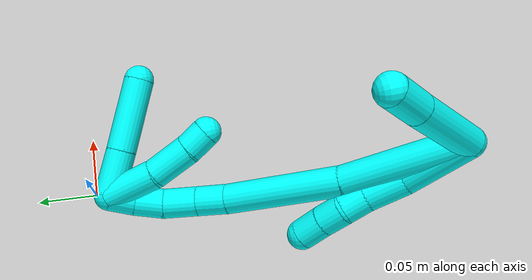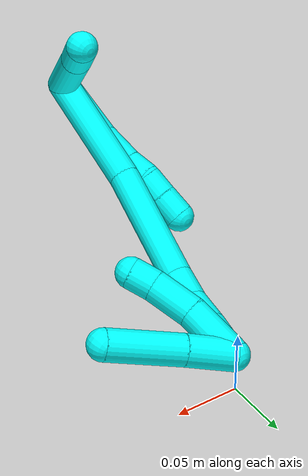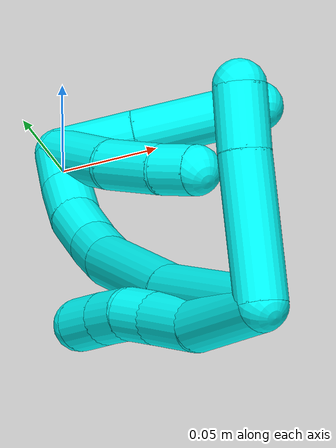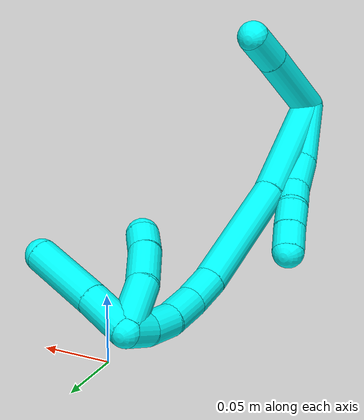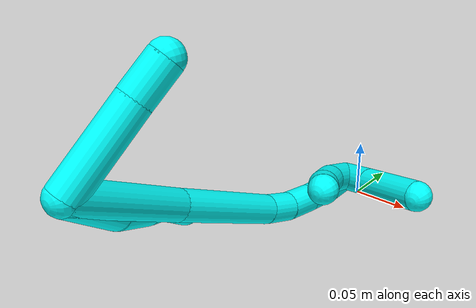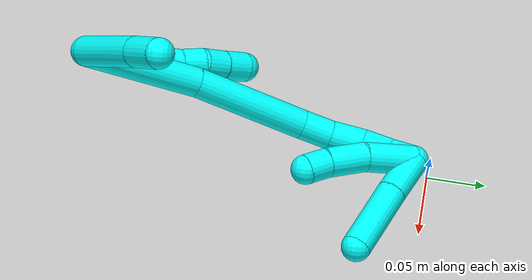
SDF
<sdf version="1.7">
 <world name="default">
  <model name="3">
   <static>0</static>
   <link name="3">
    <collision name="collision-cylinder-e_1_2_8">
     <pose>0.017478 0.001142 -0.021653 -3.08889 0.678436 -2.99247</pose>
     <geometry><cylinder><radius>0.0125</radius><length>0.055701</length></cylinder></geometry>
     <surface>
      <friction><ode><mu>1.16</mu><mu2>1.16</mu2><slip1>0</slip1><slip2>0</slip2></ode></friction>
      <contact><ode><kp>1e+06</kp><kd>1</kd><max_vel>0</max_vel><min_depth>0.001</min_depth></ode></contact>
     </surface>
    </collision>
    <visual name="visual-cylinder-e_1_2_8">
     <pose>0.017478 0.001142 -0.021653 -3.08889 0.678436 -2.99247</pose>
     <geometry><cylinder><radius>0.0125</radius><length>0.055701</length></cylinder></geometry>
     <material><ambient>0.003922 1 0.996078 1</ambient></material>
    </visual>
    <collision name="collision-cylinder-e_2_8_9">
     <pose>0.04152 0.002329 -0.058264 -3.13861 0.413512 -3.12735</pose>
     <geometry><cylinder><radius>0.0125</radius><length>0.03267</length></cylinder></geometry>
     <surface>
      <friction><ode><mu>1.16</mu><mu2>1.16</mu2><slip1>0</slip1><slip2>0</slip2></ode></friction>
      <contact><ode><kp>1e+06</kp><kd>1</kd><max_vel>0</max_vel><min_depth>0.001</min_depth></ode></contact>
     </surface>
    </collision>
    <visual name="visual-cylinder-e_2_8_9">
     <pose>0.04152 0.002329 -0.058264 -3.13861 0.413512 -3.12735</pose>
     <geometry><cylinder><radius>0.0125</radius><length>0.03267</length></cylinder></geometry>
     <material><ambient>0.003922 1 0.996078 1</ambient></material>
    </visual>
    <collision name="collision-cylinder-e_3_9_10">
     <pose>0.051983 0.001059 -0.082384 2.99907 0.398727 2.46237</pose>
     <geometry><cylinder><radius>0.0125</radius><length>0.020086</length></cylinder></geometry>
     <surface>
      <friction><ode><mu>1.16</mu><mu2>1.16</mu2><slip1>0</slip1><slip2>0</slip2></ode></friction>
      <contact><ode><kp>1e+06</kp><kd>1</kd><max_vel>0</max_vel><min_depth>0.001</min_depth></ode></contact>
     </surface>
    </collision>
    <visual name="visual-cylinder-e_3_9_10">
     <pose>0.051983 0.001059 -0.082384 2.99907 0.398727 2.46237</pose>
     <geometry><cylinder><radius>0.0125</radius><length>0.020086</length></cylinder></geometry>
     <material><ambient>0.003922 1 0.996078 1</ambient></material>
    </visual>
    <collision name="collision-cylinder-e_4_10_11">
     <pose>0.061685 -0.000161 -0.099693 -3.13006 0.618777 -3.10553</pose>
     <geometry><cylinder><radius>0.0125</radius><length>0.020006</length></cylinder></geometry>
     <surface>
      <friction><ode><mu>1.16</mu><mu2>1.16</mu2><slip1>0</slip1><slip2>0</slip2></ode></friction>
      <contact><ode><kp>1e+06</kp><kd>1</kd><max_vel>0</max_vel><min_depth>0.001</min_depth></ode></contact>
     </surface>
    </collision>
    <visual name="visual-cylinder-e_4_10_11">
     <pose>0.061685 -0.000161 -0.099693 -3.13006 0.618777 -3.10553</pose>
     <geometry><cylinder><radius>0.0125</radius><length>0.020006</length></cylinder></geometry>
     <material><ambient>0.003922 1 0.996078 1</ambient></material>
    </visual>
    <collision name="collision-cylinder-e_5_11_6">
     <pose>0.074044 -0.000356 -0.116378 3.10778 0.654692 3.0421</pose>
     <geometry><cylinder><radius>0.0125</radius><length>0.021537</length></cylinder></geometry>
     <surface>
      <friction><ode><mu>1.16</mu><mu2>1.16</mu2><slip1>0</slip1><slip2>0</slip2></ode></friction>
      <contact><ode><kp>1e+06</kp><kd>1</kd><max_vel>0</max_vel><min_depth>0.001</min_depth></ode></contact>
     </surface>
    </collision>
    <visual name="visual-cylinder-e_5_11_6">
     <pose>0.074044 -0.000356 -0.116378 3.10778 0.654692 3.0421</pose>
     <geometry><cylinder><radius>0.0125</radius><length>0.021537</length></cylinder></geometry>
     <material><ambient>0.003922 1 0.996078 1</ambient></material>
    </visual>
    <collision name="collision-cylinder-e_1_2_12">
     <pose>-0.026279 0.000136 -0.022579 -3.13557 -0.860978 3.12849</pose>
     <geometry><cylinder><radius>0.0125</radius><length>0.069294</length></cylinder></geometry>
     <surface>
      <friction><ode><mu>1.16</mu><mu2>1.16</mu2><slip1>0</slip1><slip2>0</slip2></ode></friction>
      <contact><ode><kp>1e+06</kp><kd>1</kd><max_vel>0</max_vel><min_depth>0.001</min_depth></ode></contact>
     </surface>
    </collision>
    <visual name="visual-cylinder-e_1_2_12">
     <pose>-0.026279 0.000136 -0.022579 -3.13557 -0.860978 3.12849</pose>
     <geometry><cylinder><radius>0.0125</radius><length>0.069294</length></cylinder></geometry>
     <material><ambient>0.003922 1 0.996078 1</ambient></material>
    </visual>
    <collision name="collision-cylinder-e_2_12_5">
     <pose>-0.064312 0.000866 -0.055017 -3.08144 -0.871979 3.01261</pose>
     <geometry><cylinder><radius>0.0125</radius><length>0.030706</length></cylinder></geometry>
     <surface>
      <friction><ode><mu>1.16</mu><mu2>1.16</mu2><slip1>0</slip1><slip2>0</slip2></ode></friction>
      <contact><ode><kp>1e+06</kp><kd>1</kd><max_vel>0</max_vel><min_depth>0.001</min_depth></ode></contact>
     </surface>
    </collision>
    <visual name="visual-cylinder-e_2_12_5">
     <pose>-0.064312 0.000866 -0.055017 -3.08144 -0.871979 3.01261</pose>
     <geometry><cylinder><radius>0.0125</radius><length>0.030706</length></cylinder></geometry>
     <material><ambient>0.003922 1 0.996078 1</ambient></material>
    </visual>
    <collision name="collision-cylinder-e_1_2_13">
     <pose>0.021058 0.008367 -0.044243 -2.95469 0.437459 -2.34354</pose>
     <geometry><cylinder><radius>0.0125</radius><length>0.099417</length></cylinder></geometry>
     <surface>
      <friction><ode><mu>1.16</mu><mu2>1.16</mu2><slip1>0</slip1><slip2>0</slip2></ode></friction>
      <contact><ode><kp>1e+06</kp><kd>1</kd><max_vel>0</max_vel><min_depth>0.001</min_depth></ode></contact>
     </surface>
    </collision>
    <visual name="visual-cylinder-e_1_2_13">
     <pose>0.021058 0.008367 -0.044243 -2.95469 0.437459 -2.34354</pose>
     <geometry><cylinder><radius>0.0125</radius><length>0.099417</length></cylinder></geometry>
     <material><ambient>0.003922 1 0.996078 1</ambient></material>
    </visual>
    <collision name="collision-cylinder-e_2_13_14">
     <pose>0.058822 0.03035 -0.132781 -2.84337 0.345988 -1.72139</pose>
     <geometry><cylinder><radius>0.0125</radius><length>0.098518</length></cylinder></geometry>
     <surface>
      <friction><ode><mu>1.16</mu><mu2>1.16</mu2><slip1>0</slip1><slip2>0</slip2></ode></friction>
      <contact><ode><kp>1e+06</kp><kd>1</kd><max_vel>0</max_vel><min_depth>0.001</min_depth></ode></contact>
     </surface>
    </collision>
    <visual name="visual-cylinder-e_2_13_14">
     <pose>0.058822 0.03035 -0.132781 -2.84337 0.345988 -1.72139</pose>
     <geometry><cylinder><radius>0.0125</radius><length>0.098518</length></cylinder></geometry>
     <material><ambient>0.003922 1 0.996078 1</ambient></material>
    </visual>
    <collision name="collision-cylinder-e_3_14_15">
     <pose>0.078061 0.047608 -0.189609 -2.85871 0.191788 -1.1882</pose>
     <geometry><cylinder><radius>0.0125</radius><length>0.026592</length></cylinder></geometry>
     <surface>
      <friction><ode><mu>1.16</mu><mu2>1.16</mu2><slip1>0</slip1><slip2>0</slip2></ode></friction>
      <contact><ode><kp>1e+06</kp><kd>1</kd><max_vel>0</max_vel><min_depth>0.001</min_depth></ode></contact>
     </surface>
    </collision>
    <visual name="visual-cylinder-e_3_14_15">
     <pose>0.078061 0.047608 -0.189609 -2.85871 0.191788 -1.1882</pose>
     <geometry><cylinder><radius>0.0125</radius><length>0.026592</length></cylinder></geometry>
     <material><ambient>0.003922 1 0.996078 1</ambient></material>
    </visual>
    <collision name="collision-cylinder-e_4_15_16">
     <pose>0.081118 0.053851 -0.216236 -2.95919 0.036466 -0.393609</pose>
     <geometry><cylinder><radius>0.0125</radius><length>0.028683</length></cylinder></geometry>
     <surface>
      <friction><ode><mu>1.16</mu><mu2>1.16</mu2><slip1>0</slip1><slip2>0</slip2></ode></friction>
      <contact><ode><kp>1e+06</kp><kd>1</kd><max_vel>0</max_vel><min_depth>0.001</min_depth></ode></contact>
     </surface>
    </collision>
    <visual name="visual-cylinder-e_4_15_16">
     <pose>0.081118 0.053851 -0.216236 -2.95919 0.036466 -0.393609</pose>
     <geometry><cylinder><radius>0.0125</radius><length>0.028683</length></cylinder></geometry>
     <material><ambient>0.003922 1 0.996078 1</ambient></material>
    </visual>
    <collision name="collision-cylinder-e_5_16_17">
     <pose>0.079541 0.059672 -0.242083 -2.87414 -0.170689 1.13286</pose>
     <geometry><cylinder><radius>0.0125</radius><length>0.024732</length></cylinder></geometry>
     <surface>
      <friction><ode><mu>1.16</mu><mu2>1.16</mu2><slip1>0</slip1><slip2>0</slip2></ode></friction>
      <contact><ode><kp>1e+06</kp><kd>1</kd><max_vel>0</max_vel><min_depth>0.001</min_depth></ode></contact>
     </surface>
    </collision>
    <visual name="visual-cylinder-e_5_16_17">
     <pose>0.079541 0.059672 -0.242083 -2.87414 -0.170689 1.13286</pose>
     <geometry><cylinder><radius>0.0125</radius><length>0.024732</length></cylinder></geometry>
     <material><ambient>0.003922 1 0.996078 1</ambient></material>
    </visual>
    <collision name="collision-cylinder-e_6_17_1">
     <pose>0.073045 0.06507 -0.263715 -2.92463 -0.409864 2.1763</pose>
     <geometry><cylinder><radius>0.0125</radius><length>0.022059</length></cylinder></geometry>
     <surface>
      <friction><ode><mu>1.16</mu><mu2>1.16</mu2><slip1>0</slip1><slip2>0</slip2></ode></friction>
      <contact><ode><kp>1e+06</kp><kd>1</kd><max_vel>0</max_vel><min_depth>0.001</min_depth></ode></contact>
     </surface>
    </collision>
    <visual name="visual-cylinder-e_6_17_1">
     <pose>0.073045 0.06507 -0.263715 -2.92463 -0.409864 2.1763</pose>
     <geometry><cylinder><radius>0.0125</radius><length>0.022059</length></cylinder></geometry>
     <material><ambient>0.003922 1 0.996078 1</ambient></material>
    </visual>
    <collision name="collision-cylinder-e_1_1_18">
     <pose>0.058602 0.081374 -0.264836 -1.01582 -0.543739 0.307883</pose>
     <geometry><cylinder><radius>0.0125</radius><length>0.038845</length></cylinder></geometry>
     <surface>
      <friction><ode><mu>1.16</mu><mu2>1.16</mu2><slip1>0</slip1><slip2>0</slip2></ode></friction>
      <contact><ode><kp>1e+06</kp><kd>1</kd><max_vel>0</max_vel><min_depth>0.001</min_depth></ode></contact>
     </surface>
    </collision>
    <visual name="visual-cylinder-e_1_1_18">
     <pose>0.058602 0.081374 -0.264836 -1.01582 -0.543739 0.307883</pose>
     <geometry><cylinder><radius>0.0125</radius><length>0.038845</length></cylinder></geometry>
     <material><ambient>0.003922 1 0.996078 1</ambient></material>
    </visual>
    <collision name="collision-cylinder-e_2_18_4">
     <pose>0.033171 0.118383 -0.242858 -1.04695 -0.527159 0.309032</pose>
     <geometry><cylinder><radius>0.0125</radius><length>0.061155</length></cylinder></geometry>
     <surface>
      <friction><ode><mu>1.16</mu><mu2>1.16</mu2><slip1>0</slip1><slip2>0</slip2></ode></friction>
      <contact><ode><kp>1e+06</kp><kd>1</kd><max_vel>0</max_vel><min_depth>0.001</min_depth></ode></contact>
     </surface>
    </collision>
    <visual name="visual-cylinder-e_2_18_4">
     <pose>0.033171 0.118383 -0.242858 -1.04695 -0.527159 0.309032</pose>
     <geometry><cylinder><radius>0.0125</radius><length>0.061155</length></cylinder></geometry>
     <material><ambient>0.003922 1 0.996078 1</ambient></material>
    </visual>
    <collision name="collision-cylinder-e_1_1_19">
     <pose>0.060413 0.067478 -0.252652 -0.01103 -0.37474 0.002091</pose>
     <geometry><cylinder><radius>0.0125</radius><length>0.045009</length></cylinder></geometry>
     <surface>
      <friction><ode><mu>1.16</mu><mu2>1.16</mu2><slip1>0</slip1><slip2>0</slip2></ode></friction>
      <contact><ode><kp>1e+06</kp><kd>1</kd><max_vel>0</max_vel><min_depth>0.001</min_depth></ode></contact>
     </surface>
    </collision>
    <visual name="visual-cylinder-e_1_1_19">
     <pose>0.060413 0.067478 -0.252652 -0.01103 -0.37474 0.002091</pose>
     <geometry><cylinder><radius>0.0125</radius><length>0.045009</length></cylinder></geometry>
     <material><ambient>0.003922 1 0.996078 1</ambient></material>
    </visual>
    <collision name="collision-cylinder-e_2_19_20">
     <pose>0.045146 0.07134 -0.216209 -0.230047 -0.415772 0.04873</pose>
     <geometry><cylinder><radius>0.0125</radius><length>0.034808</length></cylinder></geometry>
     <surface>
      <friction><ode><mu>1.16</mu><mu2>1.16</mu2><slip1>0</slip1><slip2>0</slip2></ode></friction>
      <contact><ode><kp>1e+06</kp><kd>1</kd><max_vel>0</max_vel><min_depth>0.001</min_depth></ode></contact>
     </surface>
    </collision>
    <visual name="visual-cylinder-e_2_19_20">
     <pose>0.045146 0.07134 -0.216209 -0.230047 -0.415772 0.04873</pose>
     <geometry><cylinder><radius>0.0125</radius><length>0.034808</length></cylinder></geometry>
     <material><ambient>0.003922 1 0.996078 1</ambient></material>
    </visual>
    <collision name="collision-cylinder-e_3_20_3">
     <pose>0.033764 0.078374 -0.192262 -0.383123 -0.445956 0.087894</pose>
     <geometry><cylinder><radius>0.0125</radius><length>0.020183</length></cylinder></geometry>
     <surface>
      <friction><ode><mu>1.16</mu><mu2>1.16</mu2><slip1>0</slip1><slip2>0</slip2></ode></friction>
      <contact><ode><kp>1e+06</kp><kd>1</kd><max_vel>0</max_vel><min_depth>0.001</min_depth></ode></contact>
     </surface>
    </collision>
    <visual name="visual-cylinder-e_3_20_3">
     <pose>0.033764 0.078374 -0.192262 -0.383123 -0.445956 0.087894</pose>
     <geometry><cylinder><radius>0.0125</radius><length>0.020183</length></cylinder></geometry>
     <material><ambient>0.003922 1 0.996078 1</ambient></material>
    </visual>
    <collision name="collision-sphere-3">
     <pose>0.029411 0.081777 -0.183818 0 -0 0</pose>
     <geometry><sphere><radius>0.0125</radius></sphere></geometry>
     <surface>
      <friction><ode><mu>1.16</mu><mu2>1.16</mu2><slip1>0</slip1><slip2>0</slip2></ode></friction>
      <contact><ode><kp>1e+06</kp><kd>1</kd><max_vel>0</max_vel><min_depth>0.001</min_depth></ode></contact>
     </surface>
    </collision>
    <visual name="visual-sphere-3">
     <pose>0.029411 0.081777 -0.183818 0 -0 0</pose>
     <geometry><sphere><radius>0.0125</radius></sphere></geometry>
     <material><ambient>0.003922 1 0.996078 1</ambient></material>
    </visual>
    <collision name="collision-sphere-20">
     <pose>0.038116 0.07497 -0.200707 0 -0 0</pose>
     <geometry><sphere><radius>0.0125</radius></sphere></geometry>
     <surface>
      <friction><ode><mu>1.16</mu><mu2>1.16</mu2><slip1>0</slip1><slip2>0</slip2></ode></friction>
      <contact><ode><kp>1e+06</kp><kd>1</kd><max_vel>0</max_vel><min_depth>0.001</min_depth></ode></contact>
     </surface>
    </collision>
    <visual name="visual-sphere-20">
     <pose>0.038116 0.07497 -0.200707 0 -0 0</pose>
     <geometry><sphere><radius>0.0125</radius></sphere></geometry>
     <material><ambient>0.003922 1 0.996078 1</ambient></material>
    </visual>
    <collision name="collision-sphere-19">
     <pose>0.052175 0.067709 -0.231711 0 -0 0</pose>
     <geometry><sphere><radius>0.0125</radius></sphere></geometry>
     <surface>
      <friction><ode><mu>1.16</mu><mu2>1.16</mu2><slip1>0</slip1><slip2>0</slip2></ode></friction>
      <contact><ode><kp>1e+06</kp><kd>1</kd><max_vel>0</max_vel><min_depth>0.001</min_depth></ode></contact>
     </surface>
    </collision>
    <visual name="visual-sphere-19">
     <pose>0.052175 0.067709 -0.231711 0 -0 0</pose>
     <geometry><sphere><radius>0.0125</radius></sphere></geometry>
     <material><ambient>0.003922 1 0.996078 1</ambient></material>
    </visual>
    <collision name="collision-sphere-6">
     <pose>0.080601 -0.000645 -0.124915 0 -0 0</pose>
     <geometry><sphere><radius>0.0125</radius></sphere></geometry>
     <surface>
      <friction><ode><mu>1.16</mu><mu2>1.16</mu2><slip1>0</slip1><slip2>0</slip2></ode></friction>
      <contact><ode><kp>1e+06</kp><kd>1</kd><max_vel>0</max_vel><min_depth>0.001</min_depth></ode></contact>
     </surface>
    </collision>
    <visual name="visual-sphere-6">
     <pose>0.080601 -0.000645 -0.124915 0 -0 0</pose>
     <geometry><sphere><radius>0.0125</radius></sphere></geometry>
     <material><ambient>0.003922 1 0.996078 1</ambient></material>
    </visual>
    <collision name="collision-sphere-11">
     <pose>0.067487 -6.7e-05 -0.107841 0 -0 0</pose>
     <geometry><sphere><radius>0.0125</radius></sphere></geometry>
     <surface>
      <friction><ode><mu>1.16</mu><mu2>1.16</mu2><slip1>0</slip1><slip2>0</slip2></ode></friction>
      <contact><ode><kp>1e+06</kp><kd>1</kd><max_vel>0</max_vel><min_depth>0.001</min_depth></ode></contact>
     </surface>
    </collision>
    <visual name="visual-sphere-11">
     <pose>0.067487 -6.7e-05 -0.107841 0 -0 0</pose>
     <geometry><sphere><radius>0.0125</radius></sphere></geometry>
     <material><ambient>0.003922 1 0.996078 1</ambient></material>
    </visual>
    <collision name="collision-sphere-10">
     <pose>0.055883 -0.000255 -0.091545 0 -0 0</pose>
     <geometry><sphere><radius>0.0125</radius></sphere></geometry>
     <surface>
      <friction><ode><mu>1.16</mu><mu2>1.16</mu2><slip1>0</slip1><slip2>0</slip2></ode></friction>
      <contact><ode><kp>1e+06</kp><kd>1</kd><max_vel>0</max_vel><min_depth>0.001</min_depth></ode></contact>
     </surface>
    </collision>
    <visual name="visual-sphere-10">
     <pose>0.055883 -0.000255 -0.091545 0 -0 0</pose>
     <geometry><sphere><radius>0.0125</radius></sphere></geometry>
     <material><ambient>0.003922 1 0.996078 1</ambient></material>
    </visual>
    <collision name="collision-sphere-9">
     <pose>0.048084 0.002374 -0.073222 0 -0 0</pose>
     <geometry><sphere><radius>0.0125</radius></sphere></geometry>
     <surface>
      <friction><ode><mu>1.16</mu><mu2>1.16</mu2><slip1>0</slip1><slip2>0</slip2></ode></friction>
      <contact><ode><kp>1e+06</kp><kd>1</kd><max_vel>0</max_vel><min_depth>0.001</min_depth></ode></contact>
     </surface>
    </collision>
    <visual name="visual-sphere-9">
     <pose>0.048084 0.002374 -0.073222 0 -0 0</pose>
     <geometry><sphere><radius>0.0125</radius></sphere></geometry>
     <material><ambient>0.003922 1 0.996078 1</ambient></material>
    </visual>
    <collision name="collision-sphere-2">
     <geometry><sphere><radius>0.0125</radius></sphere></geometry>
     <surface>
      <friction><ode><mu>1.16</mu><mu2>1.16</mu2><slip1>0</slip1><slip2>0</slip2></ode></friction>
      <contact><ode><kp>1e+06</kp><kd>1</kd><max_vel>0</max_vel><min_depth>0.001</min_depth></ode></contact>
     </surface>
    </collision>
    <visual name="visual-sphere-2">
     <geometry><sphere><radius>0.0125</radius></sphere></geometry>
     <material><ambient>0.003922 1 0.996078 1</ambient></material>
    </visual>
    <collision name="collision-sphere-8">
     <pose>0.034956 0.002285 -0.043306 0 -0 0</pose>
     <geometry><sphere><radius>0.0125</radius></sphere></geometry>
     <surface>
      <friction><ode><mu>1.16</mu><mu2>1.16</mu2><slip1>0</slip1><slip2>0</slip2></ode></friction>
      <contact><ode><kp>1e+06</kp><kd>1</kd><max_vel>0</max_vel><min_depth>0.001</min_depth></ode></contact>
     </surface>
    </collision>
    <visual name="visual-sphere-8">
     <pose>0.034956 0.002285 -0.043306 0 -0 0</pose>
     <geometry><sphere><radius>0.0125</radius></sphere></geometry>
     <material><ambient>0.003922 1 0.996078 1</ambient></material>
    </visual>
    <collision name="collision-sphere-12">
     <pose>-0.052558 0.000272 -0.045158 0 -0 0</pose>
     <geometry><sphere><radius>0.0125</radius></sphere></geometry>
     <surface>
      <friction><ode><mu>1.16</mu><mu2>1.16</mu2><slip1>0</slip1><slip2>0</slip2></ode></friction>
      <contact><ode><kp>1e+06</kp><kd>1</kd><max_vel>0</max_vel><min_depth>0.001</min_depth></ode></contact>
     </surface>
    </collision>
    <visual name="visual-sphere-12">
     <pose>-0.052558 0.000272 -0.045158 0 -0 0</pose>
     <geometry><sphere><radius>0.0125</radius></sphere></geometry>
     <material><ambient>0.003922 1 0.996078 1</ambient></material>
    </visual>
    <collision name="collision-sphere-5">
     <pose>-0.076067 0.001459 -0.064876 0 -0 0</pose>
     <geometry><sphere><radius>0.0125</radius></sphere></geometry>
     <surface>
      <friction><ode><mu>1.16</mu><mu2>1.16</mu2><slip1>0</slip1><slip2>0</slip2></ode></friction>
      <contact><ode><kp>1e+06</kp><kd>1</kd><max_vel>0</max_vel><min_depth>0.001</min_depth></ode></contact>
     </surface>
    </collision>
    <visual name="visual-sphere-5">
     <pose>-0.076067 0.001459 -0.064876 0 -0 0</pose>
     <geometry><sphere><radius>0.0125</radius></sphere></geometry>
     <material><ambient>0.003922 1 0.996078 1</ambient></material>
    </visual>
    <collision name="collision-sphere-13">
     <pose>0.042117 0.016734 -0.088486 0 -0 0</pose>
     <geometry><sphere><radius>0.0125</radius></sphere></geometry>
     <surface>
      <friction><ode><mu>1.16</mu><mu2>1.16</mu2><slip1>0</slip1><slip2>0</slip2></ode></friction>
      <contact><ode><kp>1e+06</kp><kd>1</kd><max_vel>0</max_vel><min_depth>0.001</min_depth></ode></contact>
     </surface>
    </collision>
    <visual name="visual-sphere-13">
     <pose>0.042117 0.016734 -0.088486 0 -0 0</pose>
     <geometry><sphere><radius>0.0125</radius></sphere></geometry>
     <material><ambient>0.003922 1 0.996078 1</ambient></material>
    </visual>
    <collision name="collision-sphere-14">
     <pose>0.075527 0.043965 -0.177075 0 -0 0</pose>
     <geometry><sphere><radius>0.0125</radius></sphere></geometry>
     <surface>
      <friction><ode><mu>1.16</mu><mu2>1.16</mu2><slip1>0</slip1><slip2>0</slip2></ode></friction>
      <contact><ode><kp>1e+06</kp><kd>1</kd><max_vel>0</max_vel><min_depth>0.001</min_depth></ode></contact>
     </surface>
    </collision>
    <visual name="visual-sphere-14">
     <pose>0.075527 0.043965 -0.177075 0 -0 0</pose>
     <geometry><sphere><radius>0.0125</radius></sphere></geometry>
     <material><ambient>0.003922 1 0.996078 1</ambient></material>
    </visual>
    <collision name="collision-sphere-15">
     <pose>0.080596 0.051252 -0.202142 0 -0 0</pose>
     <geometry><sphere><radius>0.0125</radius></sphere></geometry>
     <surface>
      <friction><ode><mu>1.16</mu><mu2>1.16</mu2><slip1>0</slip1><slip2>0</slip2></ode></friction>
      <contact><ode><kp>1e+06</kp><kd>1</kd><max_vel>0</max_vel><min_depth>0.001</min_depth></ode></contact>
     </surface>
    </collision>
    <visual name="visual-sphere-15">
     <pose>0.080596 0.051252 -0.202142 0 -0 0</pose>
     <geometry><sphere><radius>0.0125</radius></sphere></geometry>
     <material><ambient>0.003922 1 0.996078 1</ambient></material>
    </visual>
    <collision name="collision-sphere-16">
     <pose>0.081641 0.056451 -0.23033 0 -0 0</pose>
     <geometry><sphere><radius>0.0125</radius></sphere></geometry>
     <surface>
      <friction><ode><mu>1.16</mu><mu2>1.16</mu2><slip1>0</slip1><slip2>0</slip2></ode></friction>
      <contact><ode><kp>1e+06</kp><kd>1</kd><max_vel>0</max_vel><min_depth>0.001</min_depth></ode></contact>
     </surface>
    </collision>
    <visual name="visual-sphere-16">
     <pose>0.081641 0.056451 -0.23033 0 -0 0</pose>
     <geometry><sphere><radius>0.0125</radius></sphere></geometry>
     <material><ambient>0.003922 1 0.996078 1</ambient></material>
    </visual>
    <collision name="collision-sphere-17">
     <pose>0.07744 0.062892 -0.253836 0 -0 0</pose>
     <geometry><sphere><radius>0.0125</radius></sphere></geometry>
     <surface>
      <friction><ode><mu>1.16</mu><mu2>1.16</mu2><slip1>0</slip1><slip2>0</slip2></ode></friction>
      <contact><ode><kp>1e+06</kp><kd>1</kd><max_vel>0</max_vel><min_depth>0.001</min_depth></ode></contact>
     </surface>
    </collision>
    <visual name="visual-sphere-17">
     <pose>0.07744 0.062892 -0.253836 0 -0 0</pose>
     <geometry><sphere><radius>0.0125</radius></sphere></geometry>
     <material><ambient>0.003922 1 0.996078 1</ambient></material>
    </visual>
    <collision name="collision-sphere-1">
     <pose>0.06865 0.067247 -0.273594 0 -0 0</pose>
     <geometry><sphere><radius>0.0125</radius></sphere></geometry>
     <surface>
      <friction><ode><mu>1.16</mu><mu2>1.16</mu2><slip1>0</slip1><slip2>0</slip2></ode></friction>
      <contact><ode><kp>1e+06</kp><kd>1</kd><max_vel>0</max_vel><min_depth>0.001</min_depth></ode></contact>
     </surface>
    </collision>
    <visual name="visual-sphere-1">
     <pose>0.06865 0.067247 -0.273594 0 -0 0</pose>
     <geometry><sphere><radius>0.0125</radius></sphere></geometry>
     <material><ambient>0.003922 1 0.996078 1</ambient></material>
    </visual>
    <collision name="collision-sphere-18">
     <pose>0.048554 0.095501 -0.256077 0 -0 0</pose>
     <geometry><sphere><radius>0.0125</radius></sphere></geometry>
     <surface>
      <friction><ode><mu>1.16</mu><mu2>1.16</mu2><slip1>0</slip1><slip2>0</slip2></ode></friction>
      <contact><ode><kp>1e+06</kp><kd>1</kd><max_vel>0</max_vel><min_depth>0.001</min_depth></ode></contact>
     </surface>
    </collision>
    <visual name="visual-sphere-18">
     <pose>0.048554 0.095501 -0.256077 0 -0 0</pose>
     <geometry><sphere><radius>0.0125</radius></sphere></geometry>
     <material><ambient>0.003922 1 0.996078 1</ambient></material>
    </visual>
    <collision name="collision-sphere-4">
     <pose>0.017788 0.141266 -0.22964 0 -0 0</pose>
     <geometry><sphere><radius>0.0125</radius></sphere></geometry>
     <surface>
      <friction><ode><mu>1.16</mu><mu2>1.16</mu2><slip1>0</slip1><slip2>0</slip2></ode></friction>
      <contact><ode><kp>1e+06</kp><kd>1</kd><max_vel>0</max_vel><min_depth>0.001</min_depth></ode></contact>
     </surface>
    </collision>
    <visual name="visual-sphere-4">
     <pose>0.017788 0.141266 -0.22964 0 -0 0</pose>
     <geometry><sphere><radius>0.0125</radius></sphere></geometry>
     <material><ambient>0.003922 1 0.996078 1</ambient></material>
    </visual>
    <inertial>
     <pose>0.036738 0.03631 -0.13462 0 -0 0</pose>
     <mass>0.75</mass>
     <inertia>
      <ixx>-0.000195</ixx>
      <ixy>0</ixy>
      <ixz>0</ixz>
      <iyy>5.8e-05</iyy>
      <iyz>0</iyz>
      <izz>-0.000121</izz>
     </inertia>
    </inertial>
   </link>
   <pose>-0.027206 -0.287909 0.109583 -1.5309 1.25166 -3.02276</pose>
  </model>
 </world>
</sdf>
